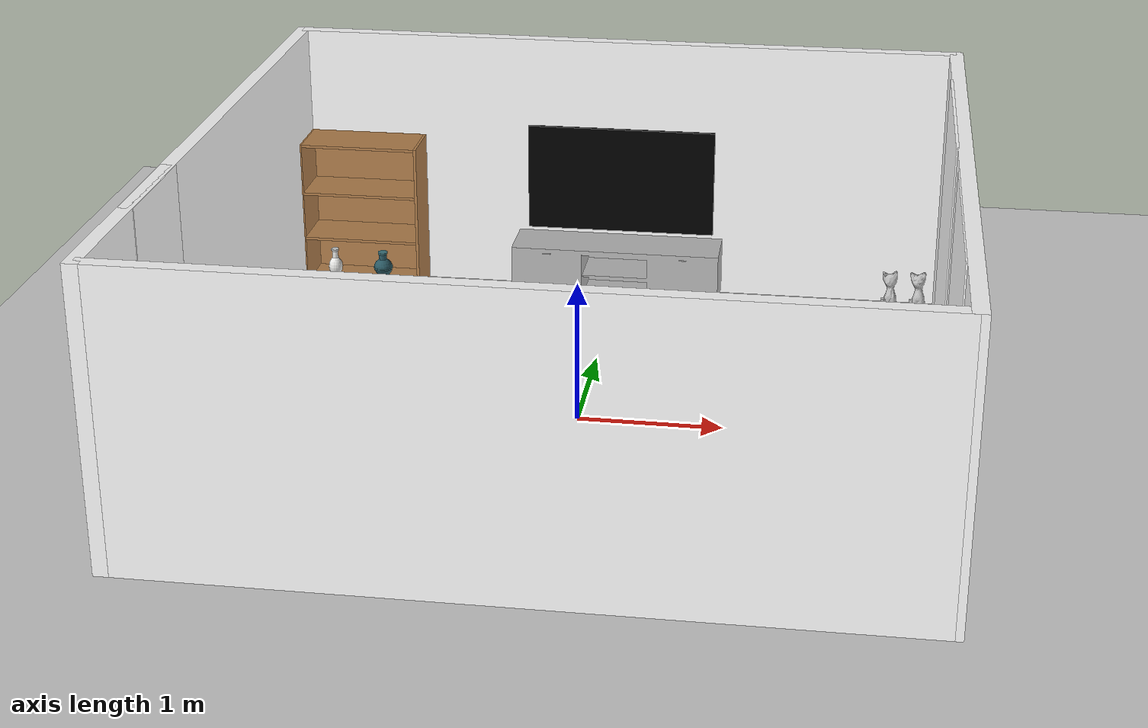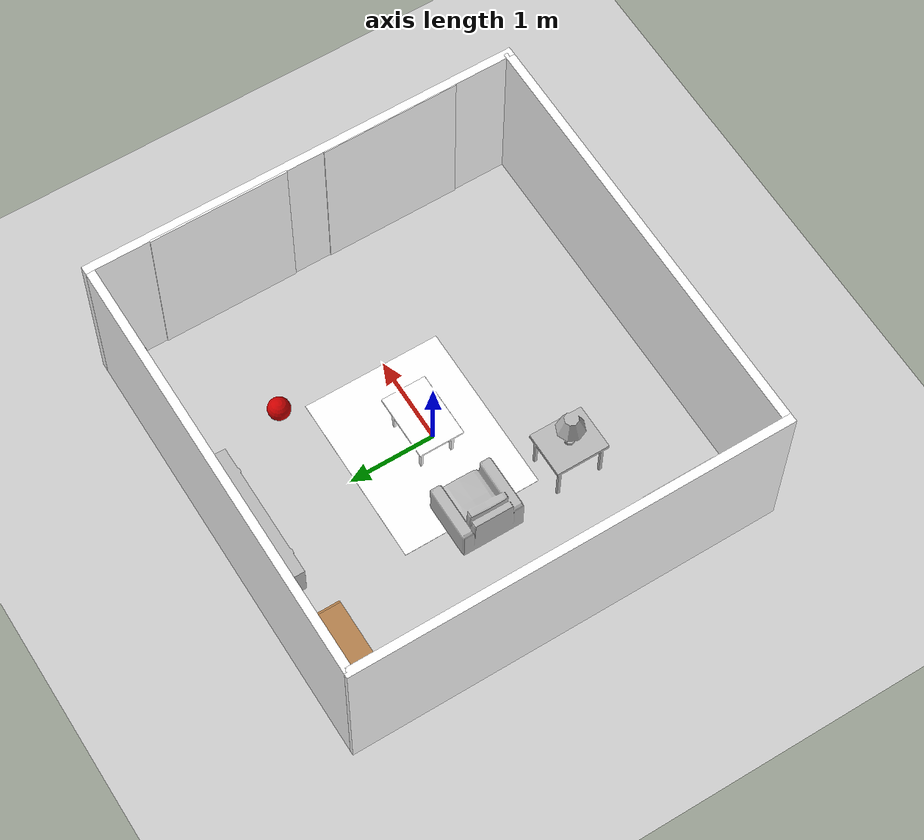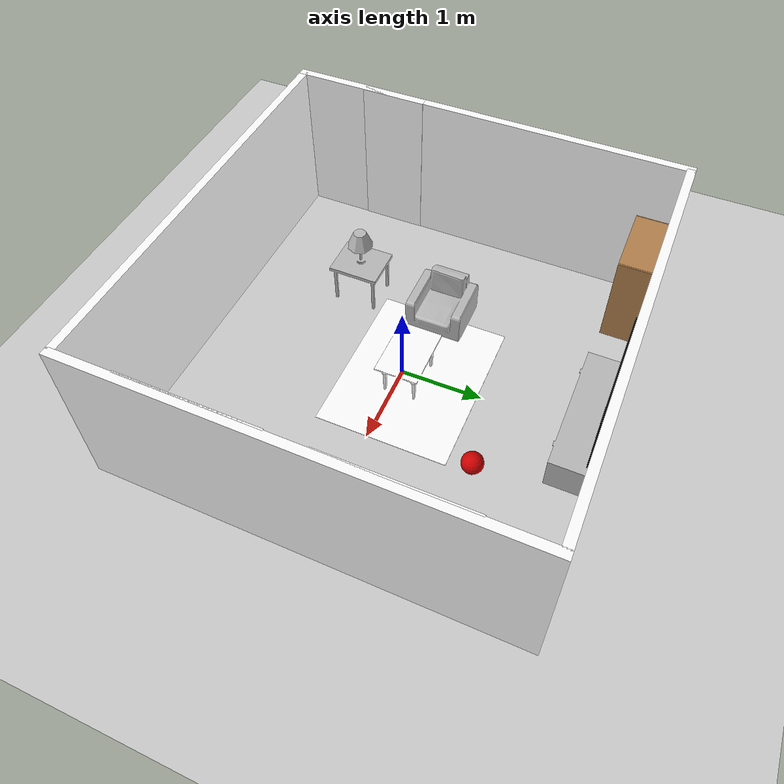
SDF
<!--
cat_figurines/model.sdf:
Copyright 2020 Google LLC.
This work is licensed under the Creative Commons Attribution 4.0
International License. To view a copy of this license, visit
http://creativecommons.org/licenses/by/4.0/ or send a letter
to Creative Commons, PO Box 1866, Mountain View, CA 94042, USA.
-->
<sdf version="1.10">
 <world name="default">
  <scene>
   <shadows>false</shadows>
   <ambient>0.400000006 0.400000006 0.400000006 1</ambient>
   <background>0.699999988 0.699999988 0.699999988 1</background>
  </scene>
  <physics type="ode">
   <real_time_update_rate>1000</real_time_update_rate>
   <max_step_size>0.001</max_step_size>
   <real_time_factor>1</real_time_factor>
   <ode>
    <solver>
     <type>quick</type>
     <iters>150</iters>
     <precon_iters>0</precon_iters>
     <sor>1.3999999999999999</sor>
     <use_dynamic_moi_rescaling>true</use_dynamic_moi_rescaling>
    </solver>
    <constraints>
     <cfm>1.0000000000000001e-05</cfm>
     <erp>0.20000000000000001</erp>
     <contact_max_correcting_vel>2000</contact_max_correcting_vel>
     <contact_surface_layer>0.01</contact_surface_layer>
    </constraints>
   </ode>
  </physics>
  <plugin name="gz::sim::systems::Physics" filename="gz-sim-physics-system"/>
  <plugin name="gz::sim::systems::UserCommands" filename="gz-sim-user-commands-system"/>
  <plugin name="gz::sim::systems::SceneBroadcaster" filename="gz-sim-scene-broadcaster-system"/>
  <plugin name="gz::sim::systems::Sensors" filename="gz-sim-sensors-system">
   <render_engine>ogre2</render_engine>
  </plugin>
  <plugin name="gz::sim::systems::Imu" filename="gz-sim-imu-system"/>
  <plugin name="gz::sim::systems::Contact" filename="gz-sim-contact-system"/>
  <gravity>0 0 -9.8000000000000007</gravity>
  <magnetic_field>5.5644999999999998e-06 2.2875799999999999e-05 -4.2388400000000002e-05</magnetic_field>
  <atmosphere type="adiabatic"/>
  <include><uri>model://ground plane</uri><name>ground_plane</name></include>
  <model name="wall_0">
   <static>true</static>
   <include><uri>model://room_wall_2x5m</uri></include>
   <pose>-2.5 0 1 0 -0 0</pose>
  </model>
  <model name="wall_1">
   <static>true</static>
   <include><uri>model://room_wall_2x5m</uri></include>
   <pose>2.5 0 1 0 -0 0</pose>
  </model>
  <model name="wall_2">
   <static>true</static>
   <include><uri>model://room_wall_2x5m</uri></include>
   <pose>0 2.45 1 0 -0 1.5707</pose>
  </model>
  <model name="wall_3">
   <static>true</static>
   <include><uri>model://room_wall_2x5m</uri></include>
   <pose>0 -2.45 1 0 -0 1.5707</pose>
  </model>
  <light name="sun" type="directional">
   <cast_shadows>false</cast_shadows>
   <pose>0 0 10 0 -0 0</pose>
   <diffuse>0.8 0.8 0.8 1</diffuse>
   <specular>0.2 0.2 0.2 1</specular>
   <intensity>3</intensity>
   <attenuation>
    <range>1000</range>
    <constant>0.9</constant>
    <linear>0.01</linear>
    <quadratic>0.001</quadratic>
   </attenuation>
   <direction>-0.5 0.1 -0.9</direction>
   <spot><inner_angle>0</inner_angle><outer_angle>0</outer_angle><falloff>0</falloff></spot>
  </light>
  <model name="door_08x2m">
   <static>true</static>
   <include><uri>model://door_08x2m</uri></include>
   <pose>-2.495 -1.2 1 0 -0 0</pose>
  </model>
  <model name="Bookshelf">
   <static>true</static>
   <pose>-2 2.4 0 0 -0 0</pose>
   <include><uri>model://Bookshelf</uri></include>
  </model>
  <model name="Cat Figurines">
   <static>true</static>
   <pose>2.21368 2.13863 0.019163 -0.003852 -0.005692 -1e-06</pose>
   <include><uri>model://cat_figurines</uri></include>
  </model>
  <model name="LampAndStand">
   <static>true</static>
   <pose>-1 -1 0 0 -0 1.5707</pose>
   <include><uri>model://LampAndStand</uri></include>
  </model>
  <model name="MiniSofa">
   <static>true</static>
   <pose>-1 0.1 0 0 -0 3.1415</pose>
   <include><uri>model://MiniSofa</uri></include>
  </model>
  <model name="decor_vase">
   <static>true</static>
   <pose>-1.87443 2.2 0.059172 0 -0 0</pose>
   <include><uri>model://decor_vase</uri></include>
  </model>
  <model name="decor_vase_tall">
   <static>true</static>
   <pose>-2.24886 2.15 0.059889 0 -0 0</pose>
   <include><uri>model://decor_vase_tall</uri></include>
  </model>
  <model name="TVStand">
   <static>true</static>
   <pose>0 2.2 0 0 -0 0</pose>
   <include><uri>model://TVStand</uri></include>
  </model>
  <model name="red_ball_10in">
   <static>false</static>
   <pose>1 1.25 0.127 0 -0 0</pose>
   <include><uri>model://red_ball_10in</uri></include>
  </model>
  <model name="rug_ivory_2m">
   <static>true</static>
   <pose>0 0.15 0 0 -0 1.5707</pose>
   <include><uri>model://rug_ivory_2m</uri></include>
  </model>
  <model name="TableMarble">
   <static>true</static>
   <pose>0 0.1 0 0 -0 1.5708</pose>
   <include><uri>model://TableMarble</uri></include>
  </model>
  <model name="tv_65in_emissive">
   <static>true</static>
   <pose>0 2.4 0.9 0 -0 1.5707</pose>
   <include><uri>model://tv_65in_emissive</uri></include>
  </model>
  <model name="window_curtains">
   <static>true</static>
   <pose>2.45 1 1 0 -0 0</pose>
   <include><uri>model://window_curtains</uri></include>
  </model>
  <model name="window_curtains_0">
   <static>true</static>
   <pose>2.45 -1 1 0 -0 0</pose>
   <include><uri>model://window_curtains</uri></include>
  </model>
 </world>
</sdf>

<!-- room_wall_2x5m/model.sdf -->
<sdf version='1.4'>
  <model name='room_wall_2x5m'>
    <link name="link">
      <visual name="visual">
        <geometry>
          <box>
            <size>0.1 5.0 2.0</size>
          </box>
        </geometry>
        <material>
          <pbr>
            <metal>
              <albedo_map>textures/wall_texture_1404x562.jpg</albedo_map>
            <metalness>0.0</metalness><roughness>0.90</roughness>
            </metal>
          </pbr>
          <ambient>1 1 1 1</ambient>
          <diffuse>1 1 1 1</diffuse>
          <specular>1 1 1 1</specular>
          <emissive>0 0 0 1</emissive>
        </material>
        <cast_shadows>1</cast_shadows>
        <transparency>0</transparency>
      </visual>
      <collision name ="collision">
        <geometry>
           <box>
            <size>0.1 5.0 2.0</size>
          </box>
        </geometry>
      </collision>
    </link>
    <static>1</static>
    <allow_auto_disable>1</allow_auto_disable>
  </model>
</sdf>

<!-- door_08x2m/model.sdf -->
<sdf version='1.4'>
  <model name='door_08x2m'>
    <link name="link">
      <visual name="visual">
        <geometry>
          <box>
            <size>0.1 0.8 2</size>
          </box>
        </geometry>
        <material>
          <pbr>
            <metal>
              <albedo_map>textures/door_08x2m.png</albedo_map>
            <metalness>0.0</metalness><roughness>0.70</roughness>
            </metal>
          </pbr>
          <ambient>1 1 1 1</ambient>
          <diffuse>1 1 1 1</diffuse>
          <specular>1 1 1 1</specular>
          <emissive>0 0 0 1</emissive>
        </material>
        <cast_shadows>1</cast_shadows>
        <transparency>0</transparency>
      </visual>
    </link>
    <static>1</static>
    <allow_auto_disable>1</allow_auto_disable>
  </model>
</sdf>

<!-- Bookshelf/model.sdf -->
<sdf version="1.5">
  <model name="Bookshelf">
    <static>true</static>
    <link name="link">
      <inertial>
        <mass>1.0</mass>
      </inertial>
      <collision name="back">
        <pose>0 0.005 0.6 0 0 0</pose>
        <geometry>
          <box>
            <size>0.9 0.01 1.2</size>
          </box>
        </geometry>
      </collision>
      <visual name="visual1">
        <pose>0 0.005 0.6 0 0 0</pose>
        <geometry>
          <box>
            <size>0.9 0.01 1.2</size>
          </box>
        </geometry>
        <material>
          <diffuse>1.0 1.0 1.0</diffuse>
          <script>
            <uri>file://media/materials/scripts/gazebo.material</uri>
            <name>Gazebo/Wood</name>
          </script>
          <!-- PBR for Ignition, material scripts for gazebo classic-->
          <pbr>
            <metal>
              <albedo_map>model://Bookshelf/bookshelf_diffuse.jpg</albedo_map>
            </metal>
          </pbr>
        </material>
      </visual>
      <collision name="left_side">
        <pose>0.45 -0.195 0.6 0 0 0</pose>
        <geometry>
          <box>
            <size>0.02 0.4 1.2</size>
          </box>
        </geometry>
      </collision>
      <visual name="visual2">
        <pose>0.45 -0.195 0.6 0 0 0</pose>
        <geometry>
          <box>
            <size>0.02 0.4 1.2</size>
          </box>
        </geometry>
        <material>
          <diffuse>1.0 1.0 1.0</diffuse>
          <script>
            <uri>file://media/materials/scripts/gazebo.material</uri>
            <name>Gazebo/Wood</name>
          </script>
          <!-- PBR for Ignition, material scripts for gazebo classic-->
          <pbr>
            <metal>
              <albedo_map>model://Bookshelf/bookshelf_diffuse.jpg</albedo_map>
            </metal>
          </pbr>
        </material>
      </visual>
      <collision name="right_side">
        <pose>-0.45 -0.195 0.6 0 0 0</pose>
        <geometry>
          <box>
            <size>0.02 0.4 1.2</size>
          </box>
        </geometry>
      </collision>
      <visual name="visual3">
        <pose>-0.45 -0.195 0.6 0 0 0</pose>
        <geometry>
          <box>
            <size>0.02 0.4 1.2</size>
          </box>
        </geometry>
        <material>
          <diffuse>1.0 1.0 1.0</diffuse>
          <script>
            <uri>file://media/materials/scripts/gazebo.material</uri>
            <name>Gazebo/Wood</name>
          </script>
          <!-- PBR for Ignition, material scripts for gazebo classic-->
          <pbr>
            <metal>
              <albedo_map>model://Bookshelf/bookshelf_diffuse.jpg</albedo_map>
            </metal>
          </pbr>
        </material>
      </visual>
      <collision name="bottom">
        <pose>0 -0.195 0.03 0 0 0</pose>
        <geometry>
          <box>
            <size>0.88 0.4 0.06</size>
          </box>
        </geometry>
      </collision>
      <visual name="visual4">
        <pose>0 -0.195 0.03 0 0 0</pose>
        <geometry>
          <box>
            <size>0.88 0.4 0.06</size>
          </box>
        </geometry>
        <material>
          <diffuse>1.0 1.0 1.0</diffuse>
          <script>
            <uri>file://media/materials/scripts/gazebo.material</uri>
            <name>Gazebo/Wood</name>
          </script>
          <!-- PBR for Ignition, material scripts for gazebo classic-->
          <pbr>
            <metal>
              <albedo_map>model://Bookshelf/bookshelf_diffuse.jpg</albedo_map>
            </metal>
          </pbr>
        </material>
      </visual>
      <collision name="top">
        <pose>0 -0.195 1.19 0 0 0</pose>
        <geometry>
          <box>
            <size>0.88 0.4 0.02</size>
          </box>
        </geometry>
      </collision>
      <visual name="visual5">
        <pose>0 -0.195 1.19 0 0 0</pose>
        <geometry>
          <box>
            <size>0.88 0.4 0.02</size>
          </box>
        </geometry>
        <material>
          <diffuse>1.0 1.0 1.0</diffuse>
          <script>
            <uri>file://media/materials/scripts/gazebo.material</uri>
            <name>Gazebo/Wood</name>
          </script>
          <!-- PBR for Ignition, material scripts for gazebo classic-->
          <pbr>
            <metal>
              <albedo_map>model://Bookshelf/bookshelf_diffuse.jpg</albedo_map>
            </metal>
          </pbr>
        </material>
      </visual>
      <collision name="low_shelf">
        <pose>0 -0.195 0.43 0 0 0</pose>
        <geometry>
          <box>
            <size>0.88 0.4 0.02</size>
          </box>
        </geometry>
      </collision>
      <visual name="visual6">
        <pose>0 -0.195 0.43 0 0 0</pose>
        <geometry>
          <box>
            <size>0.88 0.4 0.02</size>
          </box>
        </geometry>
        <material>
          <diffuse>1.0 1.0 1.0</diffuse>
          <script>
            <uri>file://media/materials/scripts/gazebo.material</uri>
            <name>Gazebo/Wood</name>
          </script>
          <!-- PBR for Ignition, material scripts for gazebo classic-->
          <pbr>
            <metal>
              <albedo_map>model://Bookshelf/bookshelf_diffuse.jpg</albedo_map>
            </metal>
          </pbr>
        </material>
      </visual>
      <collision name="high_shelf">
        <pose>0 -0.195 0.8 0 0 0</pose>
        <geometry>
          <box>
            <size>0.88 0.4 0.02</size>
          </box>
        </geometry>
      </collision>
      <visual name="visual7">
        <pose>0 -0.195 0.8 0 0 0</pose>
        <geometry>
          <box>
            <size>0.88 0.4 0.02</size>
          </box>
        </geometry>
        <material>
          <diffuse>1.0 1.0 1.0</diffuse>
          <script>
            <uri>file://media/materials/scripts/gazebo.material</uri>
            <name>Gazebo/Wood</name>
          </script>
          <!-- PBR for Ignition, material scripts for gazebo classic-->
          <pbr>
            <metal>
              <albedo_map>model://Bookshelf/bookshelf_diffuse.jpg</albedo_map>
            </metal>
          </pbr>
        </material>
      </visual>
    </link>
  </model>
</sdf>

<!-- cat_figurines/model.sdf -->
<sdf version="1.6">
  <model name="Cat Figurines">
    <link name="link_0">
      <visual name="visual">
        <geometry>
          <mesh>
            <uri>meshes/model.obj</uri>
            <scale>3 3 3</scale>
          </mesh>
        </geometry>
      </visual>
      <collision name="collision_0">
        <geometry>
          <mesh>
            <uri>meshes/model.obj</uri>
            <scale>3 3 3</scale>
          </mesh>
        </geometry>
      </collision>
    </link>
  </model>
</sdf>

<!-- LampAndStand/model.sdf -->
<sdf version="1.6">
  <model name="LampAndStand">
   <static>true</static>
    <link name="body">
      <pose>0 0 0 0 0 0</pose>

      <visual name="visual">
        <geometry>
          <mesh>
            <uri>model://LampAndStand/meshes/LampAndStand.obj</uri>
          </mesh>
        </geometry>
      </visual>

      <collision name="collision">
        <geometry>
          <mesh>
            <uri>model://LampAndStand/meshes/LampAndStand_Col.obj</uri>
          </mesh>
        </geometry>
      </collision>

    </link>
  </model>
</sdf>

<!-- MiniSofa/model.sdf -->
<sdf version="1.6">
  <model name='MiniSofa'>
    <link name="body">
      <pose>0 0 0 0 0 -1.57079632679</pose>

      <visual name="visual">
        <geometry>
          <mesh>
            <uri>model://MiniSofa/meshes/minisofa.obj</uri>
            <scale>1.00 1.00 1.00</scale>
          </mesh>
        </geometry>
      </visual>

      <collision name="collision">
        <geometry>
          <mesh>
            <uri>model://MiniSofa/meshes/minisofa.obj</uri>
            <scale>1.00 1.00 1.00</scale>
          </mesh>
        </geometry>
      </collision>

    </link>
  </model>
</sdf>

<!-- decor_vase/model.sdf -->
<sdf version="1.6">
  <model name="decor_vase">
    <static>true</static>
    <link name="link">
      <visual name="foot">
        <pose>0 0 0.0075 0 0 0</pose>
        <geometry><cylinder><radius>0.046</radius><length>0.015</length></cylinder></geometry>
        <material><pbr><metal><metalness>0.00</metalness><roughness>0.18</roughness></metal></pbr><ambient>0.160 0.340 0.380 1</ambient><diffuse>0.160 0.340 0.380 1</diffuse><specular>0.3 0.3 0.3 1</specular><emissive>0 0 0 1</emissive></material>
      </visual>
      <visual name="body">
        <pose>0 0 0.082 0 0 0</pose>
        <geometry><ellipsoid><radii>0.072 0.072 0.072</radii></ellipsoid></geometry>
        <material><pbr><metal><metalness>0.00</metalness><roughness>0.18</roughness></metal></pbr><ambient>0.160 0.340 0.380 1</ambient><diffuse>0.160 0.340 0.380 1</diffuse><specular>0.3 0.3 0.3 1</specular><emissive>0 0 0 1</emissive></material>
      </visual>
      <visual name="band">
        <pose>0 0 0.082 0 0 0</pose>
        <geometry><cylinder><radius>0.075</radius><length>0.01</length></cylinder></geometry>
        <material><pbr><metal><metalness>0.00</metalness><roughness>0.15</roughness></metal></pbr><ambient>0.240 0.460 0.490 1</ambient><diffuse>0.240 0.460 0.490 1</diffuse><specular>0.3 0.3 0.3 1</specular><emissive>0 0 0 1</emissive></material>
      </visual>
      <visual name="neck">
        <pose>0 0 0.174 0 0 0</pose>
        <geometry><cylinder><radius>0.029</radius><length>0.048</length></cylinder></geometry>
        <material><pbr><metal><metalness>0.00</metalness><roughness>0.18</roughness></metal></pbr><ambient>0.160 0.340 0.380 1</ambient><diffuse>0.160 0.340 0.380 1</diffuse><specular>0.3 0.3 0.3 1</specular><emissive>0 0 0 1</emissive></material>
      </visual>
      <visual name="rim">
        <pose>0 0 0.2025 0 0 0</pose>
        <geometry><cylinder><radius>0.038</radius><length>0.013</length></cylinder></geometry>
        <material><pbr><metal><metalness>0.00</metalness><roughness>0.15</roughness></metal></pbr><ambient>0.240 0.460 0.490 1</ambient><diffuse>0.240 0.460 0.490 1</diffuse><specular>0.3 0.3 0.3 1</specular><emissive>0 0 0 1</emissive></material>
      </visual>
      <collision name="body">
        <pose>0 0 0.1045 0 0 0</pose>
        <geometry><cylinder><radius>0.075</radius><length>0.209</length></cylinder></geometry>
      </collision>
    </link>
    <allow_auto_disable>1</allow_auto_disable>
  </model>
</sdf>

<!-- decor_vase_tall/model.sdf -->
<sdf version="1.6">
  <model name="decor_vase_tall">
    <static>true</static>
    <link name="link">
      <visual name="foot">
        <pose>0 0 0.006 0 0 0</pose>
        <geometry><cylinder><radius>0.032</radius><length>0.012</length></cylinder></geometry>
        <material><pbr><metal><metalness>0.00</metalness><roughness>0.15</roughness></metal></pbr><ambient>0.900 0.900 0.890 1</ambient><diffuse>0.900 0.900 0.890 1</diffuse><specular>0.3 0.3 0.3 1</specular><emissive>0 0 0 1</emissive></material>
      </visual>
      <visual name="body">
        <pose>0 0 0.088 0 0 0</pose>
        <geometry><ellipsoid><radii>0.055 0.055 0.078</radii></ellipsoid></geometry>
        <material><pbr><metal><metalness>0.00</metalness><roughness>0.15</roughness></metal></pbr><ambient>0.900 0.900 0.890 1</ambient><diffuse>0.900 0.900 0.890 1</diffuse><specular>0.3 0.3 0.3 1</specular><emissive>0 0 0 1</emissive></material>
      </visual>
      <visual name="neck">
        <pose>0 0 0.194 0 0 0</pose>
        <geometry><cylinder><radius>0.022</radius><length>0.06</length></cylinder></geometry>
        <material><pbr><metal><metalness>0.00</metalness><roughness>0.15</roughness></metal></pbr><ambient>0.900 0.900 0.890 1</ambient><diffuse>0.900 0.900 0.890 1</diffuse><specular>0.3 0.3 0.3 1</specular><emissive>0 0 0 1</emissive></material>
      </visual>
      <visual name="rim">
        <pose>0 0 0.229 0 0 0</pose>
        <geometry><cylinder><radius>0.03</radius><length>0.014</length></cylinder></geometry>
        <material><pbr><metal><metalness>0.00</metalness><roughness>0.12</roughness></metal></pbr><ambient>0.800 0.810 0.810 1</ambient><diffuse>0.800 0.810 0.810 1</diffuse><specular>0.3 0.3 0.3 1</specular><emissive>0 0 0 1</emissive></material>
      </visual>
      <collision name="body">
        <pose>0 0 0.118 0 0 0</pose>
        <geometry><cylinder><radius>0.055</radius><length>0.236</length></cylinder></geometry>
      </collision>
    </link>
    <allow_auto_disable>1</allow_auto_disable>
  </model>
</sdf>

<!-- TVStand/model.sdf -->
<sdf version="1.6">
  <model name="TVStand">
   <static>true</static>
    <link name="body">
      <pose>0 0 0 0 0 0</pose>

      <visual name="visual">
        <geometry>
          <mesh>
            <uri>meshes/TVStand.obj</uri>
          </mesh>
        </geometry>
      </visual>

      <collision name="collision">
        <geometry>
          <mesh>
            <uri>meshes/TVStand_Col.obj</uri>
          </mesh>
        </geometry>
      </collision>

    </link>
  </model>
</sdf>

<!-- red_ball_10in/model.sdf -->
<sdf version="1.5">
  <model name="red_ball_10in">
    <pose>0 0 0.127 0 0 0</pose>
    <link name="link">
      <inertial>
        <mass>0.213</mass>
        <inertia>
          <ixx>0.003226667</ixx>
          <ixy>0</ixy>
          <ixz>0</ixz>
          <iyy>0.003226667</iyy>
          <iyz>0</iyz>
          <izz>0.003226667</izz>
        </inertia>
      </inertial>
      <visual name="visual">
        <geometry>
          <sphere>
            <radius>0.127</radius>
          </sphere>
        </geometry>
        <material>
          <ambient>0.8 0 0 1</ambient>
          <diffuse>0.8 0 0 1</diffuse>
          <specular>0.8 0 0 1</specular>
        </material>
      </visual>
      <collision name="collision">
        <geometry>
          <sphere>
            <radius>0.127</radius>
          </sphere>
        </geometry>
        <surface>
          <bounce>
            <restitution_coefficient>0.15937</restitution_coefficient>
            <threshold>0</threshold>
          </bounce>
          <contact>
            <ode>
              <max_vel>100</max_vel>
              <min_depth>0.001</min_depth>
            </ode>
          </contact>
        </surface>
      </collision>
    </link>
  </model>
</sdf>

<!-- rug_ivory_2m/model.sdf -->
<sdf version='1.4'>
  <model name='rug_ivory_2m'>
    <link name="link">
      <visual name="visual">
        <geometry>
          <box>
            <size>1.6 2 0.005</size>
          </box>
        </geometry>
        <material>
          <pbr>
            <metal>
              <albedo_map>textures/rug_ivory_469x588.png</albedo_map>
            <metalness>0.0</metalness><roughness>0.95</roughness>
            </metal>
          </pbr>
          <ambient>1 1 1 1</ambient>
          <diffuse>1 1 1 1</diffuse>
          <specular>1 1 1 1</specular>
          <emissive>0 0 0 1</emissive>
        </material>
      </visual>
    </link>
    <static>1</static>
    <allow_auto_disable>1</allow_auto_disable>
  </model>
</sdf>

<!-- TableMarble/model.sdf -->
<sdf version="1.5">
  <model name="table_marble">
    <static>true</static>
    <pose>0 0 0.324 0 0 0</pose>
    <link name="link">
      <collision name="collision">
        <geometry>
          <mesh>
            <uri>meshes/table_lightmap.dae</uri>
            <scale>0.05 0.1 0.125</scale>
          </mesh>
        </geometry>
      </collision>
      <visual name="visual">
        <geometry>
          <mesh>
            <uri>meshes/table_lightmap.dae</uri>
            <scale>0.05 0.1 0.125</scale>
          </mesh>
        </geometry>
        <material>
          <pbr>
            <metal>
              <albedo_map>textures/marble.png</albedo_map>
            </metal>
          </pbr>
          <ambient>1 1 1 1</ambient>
          <diffuse>1 1 1 1</diffuse>
          <specular>1 1 1 1</specular>
          <emissive>0 0 0 1</emissive>
        </material>
      </visual>
    </link>
  </model>
</sdf>

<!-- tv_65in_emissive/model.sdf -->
<sdf version='1.4'>
  <model name='tv_65in_emissive'>
    <link name="link">
      <visual name="visual">
        <geometry>
          <box>
            <size>0.05 1.45 0.83</size>
          </box>
        </geometry>
        <material>
          <pbr>
            <metal>
              <emissive_map>textures/tv_65in_maldives_909x541.jpg</emissive_map>
            <metalness>0.0</metalness><roughness>0.25</roughness>
            </metal>
          </pbr>
          <ambient>0 0 0 1</ambient>
          <diffuse>0 0 0</diffuse>
          <specular>1 1 1 1</specular>
          <emissive>0.8 0.8 0.8 1</emissive>
        </material>
      </visual>
    </link>
    <static>1</static>
    <allow_auto_disable>1</allow_auto_disable>
  </model>
</sdf>

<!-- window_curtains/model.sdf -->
<sdf version='1.4'>
  <model name='window_curtains'>
    <link name="link">
      <visual name="visual">
        <geometry>
          <box>
            <size>0.02 1.5676 2</size>
          </box>
        </geometry>
        <material>
          <pbr>
            <metal>
              <emissive_map>textures/window_curtains.png</emissive_map>
            <metalness>0.0</metalness><roughness>0.95</roughness>
            </metal>
          </pbr>
          <ambient>1 1 1 1</ambient>
          <diffuse>1 1 1 1</diffuse>
          <specular>1 1 1 1</specular>
          <emissive>0.4 0.4 0.4 1</emissive>
        </material>
      </visual>
    </link>
    <static>1</static>
    <allow_auto_disable>1</allow_auto_disable>
  </model>
</sdf>
